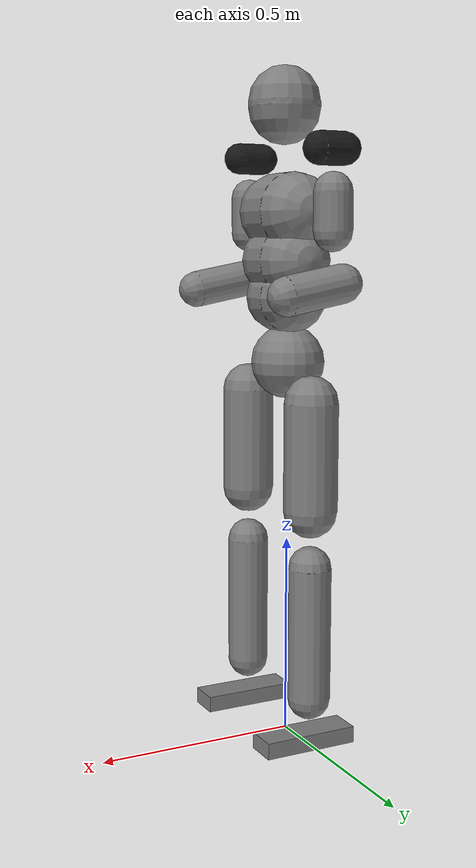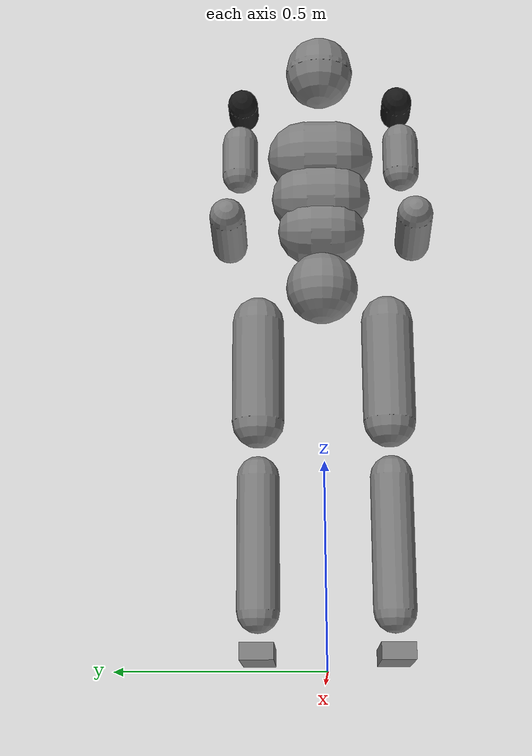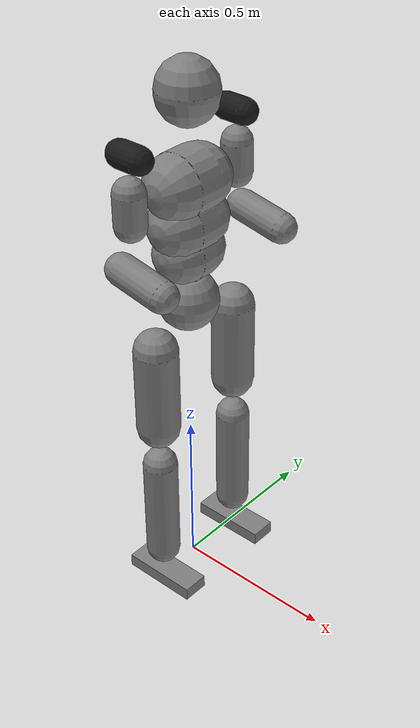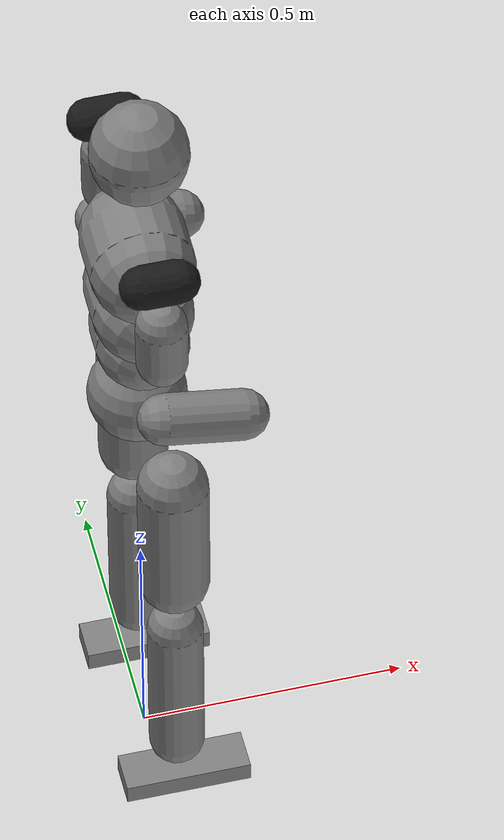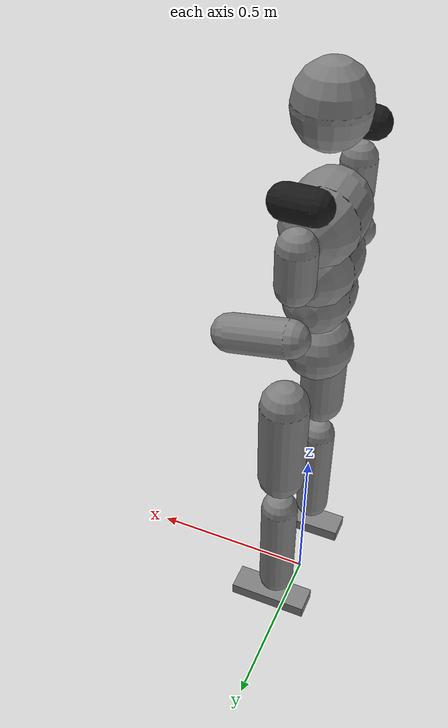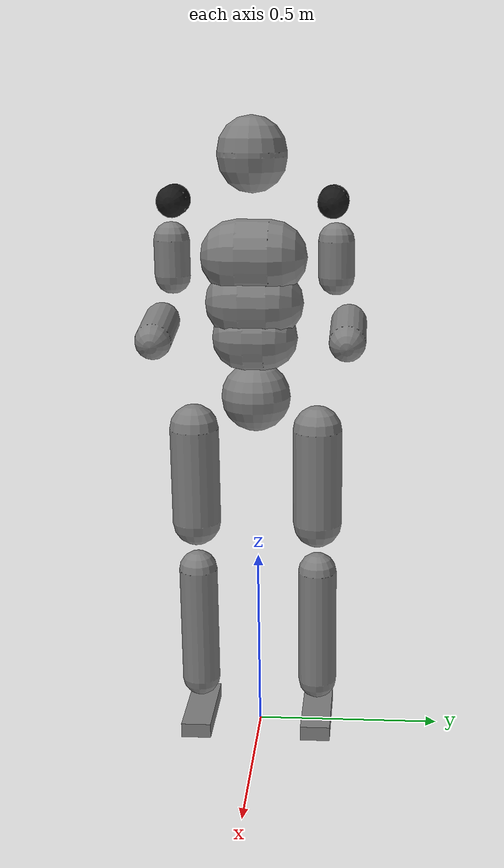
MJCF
<mujoco model="h1_2">
  <compiler angle="radian" meshdir="../mesh/H1_2/" />

  <worldbody>
    <body name="pelvis" pos="0 0 1.03">
      <inertial pos="-0.0004 3.7e-05 -0.046864" quat="0.497097 0.496809 -0.503132 0.502925" mass="5.983" diaginertia="0.0531565 0.0491678 0.00902583" />
      <joint name="floating_base_joint" type="free" limited="false" actuatorfrclimited="false" />
      <geom name="pelvis_collision" type="sphere" size="0.091" pos="0 0 -0.08" />
      <body name="left_hip_yaw_link" pos="0 0.0875 -0.1632">
        <inertial pos="0 -0.026197 0.006647" quat="0.704899 -0.0553755 0.0548434 0.705013" mass="2.829" diaginertia="0.00574303 0.00455361 0.00349461" />
        <joint name="left_hip_yaw_joint" pos="0 0 0" axis="0 0 1" limited="true" range="-0.43 0.43" actuatorfrcrange="-200 200" stiffness="98.70" damping="6.28" armature="0.025" frictionloss="0.03" />
        <body name="left_hip_pitch_link" pos="0 0.0755 0">
          <inertial pos="-0.00781 -0.004724 -6.3e-05" quat="0.701575 0.711394 0.0330266 0.0249149" mass="2.92" diaginertia="0.00560661 0.00445055 0.00385068" />
          <joint name="left_hip_pitch_joint" pos="0 0 0" axis="0 1 0" limited="true" range="-3.14 2.5" actuatorfrcrange="-200 200" stiffness="98.70" damping="6.28" armature="0.025" frictionloss="0.03" />
          <body name="left_hip_roll_link">
            <inertial pos="0.004171 -0.008576 -0.194509" quat="0.634842 0.0146079 0.0074063 0.772469" mass="4.962" diaginertia="0.0480229 0.0462788 0.00887409" />
            <joint name="left_hip_roll_joint" pos="0 0 0" axis="1 0 0" limited="true" range="-0.43 3.14" actuatorfrcrange="-200 200" stiffness="98.70" damping="6.28" armature="0.025" frictionloss="0.03" />
            <geom name="left_thigh" type="capsule" size="0.065" fromto="0.026 0 0 0.026 0 -0.26" />
            <body name="left_knee_link" pos="0 0 -0.4">
              <inertial pos="0.000179 0.000121 -0.168936" quat="0.416585 0.0104983 0.00514003 0.909021" mass="3.839" diaginertia="0.0391044 0.038959 0.00501125" />
              <joint name="left_knee_joint" pos="0 0 0" axis="0 1 0" limited="true" range="-0.12 2.19" actuatorfrcrange="-300 300" stiffness="157.91" damping="10.05" armature="0.040" frictionloss="0.03" />
              <geom name="left_shin" type="capsule" size="0.052" fromto="0.026 0 0 0.026 0 -0.325" />
              <body name="left_ankle_pitch_link" pos="0 0 -0.4">
                <inertial pos="-0.000294 0 -0.010794" quat="0.999984 0 -0.00574445 0" mass="0.102" diaginertia="2.39454e-05 2.1837e-05 1.34126e-05" />
                <joint name="left_ankle_pitch_joint" pos="0 0 0" axis="0 1 0" limited="true" range="-0.897334 0.523598" actuatorfrcrange="-60 60" stiffness="39.48" damping="2.51" armature="0.010" frictionloss="0.03" />
                <body name="left_ankle_roll_link" pos="0 0 -0.02">
                  <inertial pos="0.029589 0 -0.015973" quat="0 0.725858 0 0.687845" mass="0.747" diaginertia="0.00359178 0.00343534 0.000640307" />
                  <joint name="left_ankle_roll_joint" pos="0 0 0" axis="1 0 0" limited="true" range="-0.261799 0.261799" actuatorfrcrange="-40 40" stiffness="19.74" damping="1.26" armature="0.005" frictionloss="0.03" />
                  <geom name="left_foot_collision" type="box" pos="0.039 0 -0.005" size="0.1185 0.04 0.02" />
                </body>
              </body>
            </body>
          </body>
        </body>
      </body>
      <body name="right_hip_yaw_link" pos="0 -0.0875 -0.1632">
        <inertial pos="0 0.026197 0.006647" quat="0.705013 0.0548434 -0.0553755 0.704899" mass="2.829" diaginertia="0.00574303 0.00455361 0.00349461" />
        <joint name="right_hip_yaw_joint" pos="0 0 0" axis="0 0 1" limited="true" range="-0.43 0.43" actuatorfrcrange="-200 200" stiffness="98.70" damping="6.28" armature="0.025" frictionloss="0.03" />
        <body name="right_hip_pitch_link" pos="0 -0.0755 0">
          <inertial pos="-0.00781 0.004724 -6.3e-05" quat="0.711394 0.701575 -0.0249149 -0.0330266" mass="2.92" diaginertia="0.00560661 0.00445055 0.00385068" />
          <joint name="right_hip_pitch_joint" pos="0 0 0" axis="0 1 0" limited="true" range="-3.14 2.5" actuatorfrcrange="-200 200" stiffness="98.70" damping="6.28" armature="0.025" frictionloss="0.03" />
          <body name="right_hip_roll_link">
            <inertial pos="0.004171 0.008576 -0.194509" quat="0.772469 0.0074063 0.0146079 0.634842" mass="4.962" diaginertia="0.0480229 0.0462788 0.00887409" />
            <joint name="right_hip_roll_joint" pos="0 0 0" axis="1 0 0" limited="true" range="-3.14 0.43" actuatorfrcrange="-200 200" stiffness="98.70" damping="6.28" armature="0.025" frictionloss="0.03" />
            <geom name="right_thigh" type="capsule" size="0.065" fromto="0.026 0 0 0.026 0 -0.26" />
            <body name="right_knee_link" pos="0 0 -0.4">
              <inertial pos="0.000179 -0.000121 -0.168936" quat="0.909021 0.00514003 0.0104983 0.416585" mass="3.839" diaginertia="0.0391044 0.038959 0.00501125" />
              <joint name="right_knee_joint" pos="0 0 0" axis="0 1 0" limited="true" range="-0.12 2.19" actuatorfrcrange="-300 300" stiffness="157.91" damping="10.05" armature="0.040" frictionloss="0.03" />
              <geom name="right_shin" type="capsule" size="0.052" fromto="0.026 0 0 0.026 0 -0.325" />
              <body name="right_ankle_pitch_link" pos="0 0 -0.4">
                <inertial pos="-0.000294 0 -0.010794" quat="0.999984 0 -0.00574445 0" mass="0.102" diaginertia="2.39454e-05 2.1837e-05 1.34126e-05" />
                <joint name="right_ankle_pitch_joint" pos="0 0 0" axis="0 1 0" limited="true" range="-0.897334 0.523598" actuatorfrcrange="-60 60" stiffness="39.48" damping="2.51" armature="0.010" frictionloss="0.03" />
                <body name="right_ankle_roll_link" pos="0 0 -0.02">
                  <inertial pos="0.029589 0 -0.015973" quat="0 0.725858 0 0.687845" mass="0.747" diaginertia="0.00359178 0.00343534 0.000640307" />
                  <joint name="right_ankle_roll_joint" pos="0 0 0" axis="1 0 0" limited="true" range="-0.261799 0.261799" actuatorfrcrange="-40 40" stiffness="19.74" damping="1.26" armature="0.005" frictionloss="0.03" />
                  <geom name="right_foot_collision" type="box" pos="0.039 0 -0.005" size="0.1185 0.04 0.02" />
                </body>
              </body>
            </body>
          </body>
        </body>
      </body>
      <body name="torso_link">
        <inertial pos="0.000489 0.002797 0.20484" quat="0.999989 -0.00130808 -0.00282289 -0.00349105" mass="17.789" diaginertia="0.487315 0.409628 0.127837" />
        <joint name="torso_joint" pos="0 0 0" axis="0 0 1" limited="true" range="-2.35 2.35" actuatorfrcrange="-200 200" stiffness="98.70" damping="6.28" armature="0.025" frictionloss="0.03" />
        <geom size="0.04 0.08 0.05" pos="0 0 0.15" type="box" rgba="0.1 0.1 0.1 1" />
        <site name="imu" size="0.01" pos="-0.04452 -0.01891 0.27756" />
        <geom name="torso_collision1" type="capsule" size="0.095" fromto="0.0065 -0.042 .286 0.0065 0.042 .286" />
        <geom name="torso_collision2" type="capsule" size="0.091" fromto="0.0065 -0.036 .169 0.0065 0.036 .169" />
        <geom name="torso_collision3" type="capsule" size="0.085" fromto="0.0065 -0.026 .078 0.0065 0.026 .078" />
        <geom name="head_collision" type="capsule" size="0.088" fromto="0.013 0 .533 0.013 0 .546" />
        <body name="head_aux" pos="0 0 0.7">
          <geom name="head_aux" type="sphere" size=".0001" density="0" />
        </body>
        <body name="left_shoulder_pitch_link" pos="0 0.14806 0.42333" quat="0.991445 0.130526 0 0">
          <inertial pos="0.003053 0.06042 -0.0059" quat="0.761799 0.645681 -0.0378496 -0.0363943" mass="1.327" diaginertia="0.000588757 0.00053309 0.000393023" />
          <joint name="left_shoulder_pitch_joint" pos="0 0 0" axis="0 1 0" limited="true" range="-3.14 1.57" actuatorfrcrange="-40 40" stiffness="19.74" damping="1.26" armature="0.005" frictionloss="0.03" />
          <geom type="capsule" size="0.039" fromto="-0.0325 0.052 -0.013 0.0325 0.052 -0.013" rgba="0.1 0.1 0.1 1" />
          <body name="left_shoulder_roll_link" pos="0.0342 0.061999 -0.0060011" quat="0.991445 -0.130526 0 0">
            <inertial pos="-0.030932 -1e-06 -0.10609" quat="0.986055 0.000456937 0.166408 0.00213553" mass="1.393" diaginertia="0.00200869 0.00193464 0.000449847" />
            <joint name="left_shoulder_roll_joint" pos="0 0 0" axis="1 0 0" limited="true" range="-0.38 3.4" actuatorfrcrange="-40 40" stiffness="19.74" damping="1.26" armature="0.005" frictionloss="0.03" />

            <body name="left_shoulder_yaw_link" pos="-0.0342 0 -0.1456">
              <inertial pos="0.004583 0.001128 -0.001128" quat="0.663644 -0.0108866 -0.0267235 0.747492" mass="1.505" diaginertia="0.00431782 0.00420697 0.000645658" />
              <joint name="left_shoulder_yaw_joint" pos="0 0 0" axis="0 0 1" limited="true" range="-2.66 3.01" actuatorfrcrange="-18 18" stiffness="7.90" damping="0.50" armature="0.002" frictionloss="0.03" />
              <geom name="left_shoulder_yaw_collision" type="capsule" size="0.046" fromto="0 0 -0.052 0 0 0.039" />
              <body name="left_elbow_link" pos="0.006 0.0329 -0.182">
                <inertial pos="0.077092 -0.028751 -0.009714" quat="0.544921 0.610781 0.423352 0.388305" mass="0.691" diaginertia="0.000942091 0.000905273 0.00023025" />
                <joint name="left_elbow_joint" pos="0 0 0" axis="0 1 0" limited="true" range="-0.95 3.18" actuatorfrcrange="-18 18" stiffness="7.90" damping="0.50" armature="0.002" frictionloss="0.03" />
                <geom name="left_elbow_yaw_collision" type="capsule" size="0.046" fromto="-0.013 0 0.013 0.13 0 -0.013" />
                <body name="left_wrist_roll_link" pos="0.121 -0.0329 -0.011">
                  <inertial pos="0.035281 -0.00232 0.000337" quat="0.334998 0.622198 -0.240131 0.66557" mass="0.683" diaginertia="0.00034681 0.000328248 0.000294628" />
                  <joint name="left_wrist_roll_joint" pos="0 0 0" axis="1 0 0" limited="true" range="-3.01 2.75" actuatorfrcrange="-19 19" stiffness="7.90" damping="0.50" armature="0.002" frictionloss="0.03" />
                  <body name="left_wrist_pitch_link" pos="0.087 0 0">
                    <inertial pos="0.020395 3.6e-05 -0.002973" quat="0.915893 -0.228405 -0.327262 -0.0432527" mass="0.484" diaginertia="7.25675e-05 7.00325e-05 6.9381e-05" />
                    <joint name="left_wrist_pitch_joint" pos="0 0 0" axis="0 1 0" limited="true" range="-0.4625 0.4625" actuatorfrcrange="-19 19" stiffness="7.90" damping="0.50" armature="0.002" frictionloss="0.03" />
                    <body name="left_wrist_yaw_link" pos="0.02 0 0">
                      <inertial pos="0.0770303 -0.00131441 -0.00068617" quat="0.499919 0.510625 0.506813 0.482165" mass="0.26543" diaginertia="0.000854397 0.000723298 0.00022115" />
                      <joint name="left_wrist_yaw_joint" pos="0 0 0" axis="0 0 1" limited="true" range="-1.27 1.27" actuatorfrcrange="-19 19" stiffness="7.90" damping="0.50" armature="0.002" frictionloss="0.03" />
                    </body>
                  </body>
                </body>
              </body>
            </body>
          </body>
        </body>
        <body name="right_shoulder_pitch_link" pos="0 -0.14806 0.42333" quat="0.991445 -0.130526 0 0">
          <inertial pos="0.003053 -0.06042 -0.0059" quat="0.645681 0.761799 0.0363943 0.0378496" mass="1.327" diaginertia="0.000588757 0.00053309 0.000393023" />
          <joint name="right_shoulder_pitch_joint" pos="0 0 0" axis="0 1 0" limited="true" range="-3.14 1.57" actuatorfrcrange="-40 40" stiffness="19.74" damping="1.26" armature="0.005" frictionloss="0.03" />
          <geom type="capsule" size="0.039" fromto="-0.0325 -0.052 -0.013 0.0325 -0.052 -0.013" rgba="0.1 0.1 0.1 1" />
          <body name="right_shoulder_roll_link" pos="0.0342 -0.061999 -0.0060011" quat="0.991445 0.130526 0 0">
            <inertial pos="-0.030932 1e-06 -0.10609" quat="0.986055 -0.000456937 0.166408 -0.00213553" mass="1.393" diaginertia="0.00200869 0.00193464 0.000449847" />
            <joint name="right_shoulder_roll_joint" pos="0 0 0" axis="1 0 0" limited="true" range="-3.4 0.38" actuatorfrcrange="-40 40" stiffness="19.74" damping="1.26" armature="0.005" frictionloss="0.03" />

            <body name="right_shoulder_yaw_link" pos="-0.0342 0 -0.1456">
              <inertial pos="0.004583 -0.001128 -0.001128" quat="0.747492 -0.0267235 -0.0108866 0.663644" mass="1.505" diaginertia="0.00431782 0.00420697 0.000645658" />
              <joint name="right_shoulder_yaw_joint" pos="0 0 0" axis="0 0 1" limited="true" range="-3.01 2.66" actuatorfrcrange="-18 18" stiffness="7.90" damping="0.50" armature="0.002" frictionloss="0.03" />
              <geom name="right_shoulder_yaw_collision" type="capsule" size="0.046" fromto="0 0 -0.052 0 0 0.039" />
              <body name="right_elbow_link" pos="0.006 -0.0329 -0.182">
                <inertial pos="0.077092 0.028751 -0.009714" quat="0.388305 0.423352 0.610781 0.544921" mass="0.691" diaginertia="0.000942091 0.000905273 0.00023025" />
                <joint name="right_elbow_joint" pos="0 0 0" axis="0 1 0" limited="true" range="-0.95 3.18" actuatorfrcrange="-18 18" stiffness="7.90" damping="0.50" armature="0.002" frictionloss="0.03" />
                <geom name="right_elbow_yaw_collision" type="capsule" size="0.046" fromto="-0.013 0 0.013 0.13 0 -0.013" />
                <body name="right_wrist_roll_link" pos="0.121 0.0329 -0.011">
                  <inertial pos="0.035281 -0.00232 0.000337" quat="0.334998 0.622198 -0.240131 0.66557" mass="0.683" diaginertia="0.00034681 0.000328248 0.000294628" />
                  <joint name="right_wrist_roll_joint" pos="0 0 0" axis="1 0 0" limited="true" range="-2.75 3.01" actuatorfrcrange="-19 19" stiffness="7.90" damping="0.50" armature="0.002" frictionloss="0.03" />
                  <body name="right_wrist_pitch_link" pos="0.087 0 0">
                    <inertial pos="0.020395 3.6e-05 -0.002973" quat="0.915893 -0.228405 -0.327262 -0.0432527" mass="0.484" diaginertia="7.25675e-05 7.00325e-05 6.9381e-05" />
                    <joint name="right_wrist_pitch_joint" pos="0 0 0" axis="0 1 0" limited="true" range="-0.4625 0.4625" actuatorfrcrange="-19 19" stiffness="7.90" damping="0.50" armature="0.002" frictionloss="0.03" />
                    <body name="right_wrist_yaw_link" pos="0.02 0 0">
                      <inertial pos="0.0770303 0.0013013 -0.000699011" quat="0.482149 0.506915 0.510629 0.499827" mass="0.26543" diaginertia="0.00085381 0.000722728 0.000221145" />
                      <joint name="right_wrist_yaw_joint" pos="0 0 0" axis="0 0 1" limited="true" range="-1.27 1.27" actuatorfrcrange="-19 19" stiffness="7.90" damping="0.50" armature="0.002" frictionloss="0.03" />
                    </body>
                  </body>
                </body>
              </body>
            </body>
          </body>
        </body>
      </body>
    </body>
  </worldbody>

  <actuator>
    <motor name="left_hip_yaw_joint" joint="left_hip_yaw_joint" />
    <motor name="left_hip_pitch_joint" joint="left_hip_pitch_joint" />
    <motor name="left_hip_roll_joint" joint="left_hip_roll_joint" />
    <motor name="left_knee_joint" joint="left_knee_joint" />
    <motor name="left_ankle_pitch_joint" joint="left_ankle_pitch_joint" />
    <motor name="left_ankle_roll_joint" joint="left_ankle_roll_joint" />
    <motor name="right_hip_yaw_joint" joint="right_hip_yaw_joint" />
    <motor name="right_hip_pitch_joint" joint="right_hip_pitch_joint" />
    <motor name="right_hip_roll_joint" joint="right_hip_roll_joint" />
    <motor name="right_knee_joint" joint="right_knee_joint" />
    <motor name="right_ankle_pitch_joint" joint="right_ankle_pitch_joint" />
    <motor name="right_ankle_roll_joint" joint="right_ankle_roll_joint" />
    <motor name="torso_joint" joint="torso_joint" />
    <motor name="left_shoulder_pitch_joint" joint="left_shoulder_pitch_joint" />
    <motor name="left_shoulder_roll_joint" joint="left_shoulder_roll_joint" />
    <motor name="left_shoulder_yaw_joint" joint="left_shoulder_yaw_joint" />
    <motor name="left_elbow_joint" joint="left_elbow_joint" />
    <motor name="left_wrist_roll_joint" joint="left_wrist_roll_joint" />
    <motor name="left_wrist_pitch_joint" joint="left_wrist_pitch_joint" />
    <motor name="left_wrist_yaw_joint" joint="left_wrist_yaw_joint" />
    <motor name="right_shoulder_pitch_joint" joint="right_shoulder_pitch_joint" />
    <motor name="right_shoulder_roll_joint" joint="right_shoulder_roll_joint" />
    <motor name="right_shoulder_yaw_joint" joint="right_shoulder_yaw_joint" />
    <motor name="right_elbow_joint" joint="right_elbow_joint" />
    <motor name="right_wrist_roll_joint" joint="right_wrist_roll_joint" />
    <motor name="right_wrist_pitch_joint" joint="right_wrist_pitch_joint" />
    <motor name="right_wrist_yaw_joint" joint="right_wrist_yaw_joint" />
  </actuator>

  <sensor>
    <gyro name="imu-angular-velocity" site="imu" noise="5e-4" cutoff="34.9" />
    <accelerometer name="imu-linear-acceleration" site="imu" noise="1e-2" cutoff="157" />
  </sensor>

</mujoco>
